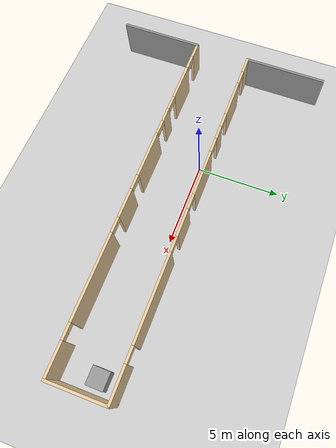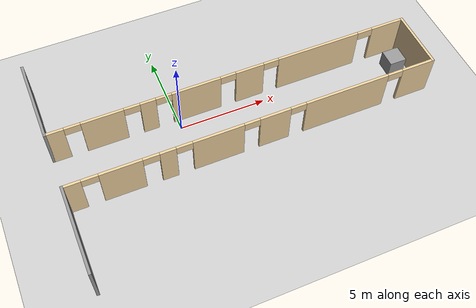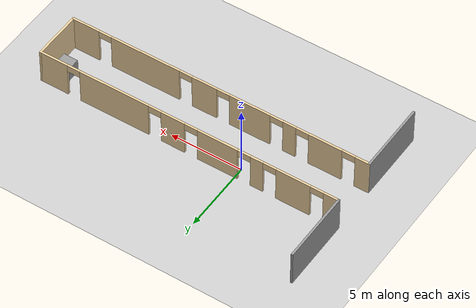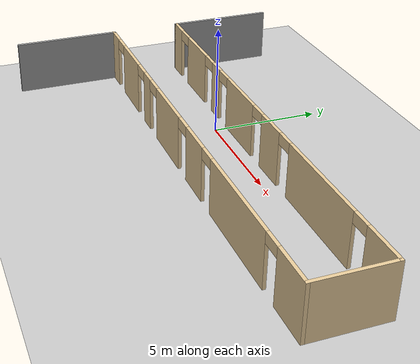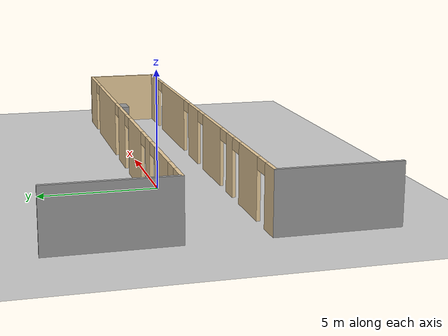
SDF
<sdf version="1.7">
 <world name="default">
  <light name="sun" type="directional">
   <pose>0 0 10 0 -0 0</pose>
   <diffuse>0.8 0.8 0.8 1</diffuse>
   <specular>0.2 0.2 0.2 1</specular>
   <attenuation>
    <range>1000</range>
    <constant>0.9</constant>
    <linear>0.01</linear>
    <quadratic>0.001</quadratic>
   </attenuation>
   <direction>-0.5 0.1 -0.9</direction>
   <spot><inner_angle>0</inner_angle><outer_angle>0</outer_angle><falloff>0</falloff></spot>
  </light>
  <model name="ground_plane">
   <static>1</static>
   <link name="link">
    <collision name="collision">
     <geometry><plane><normal>0 0 1</normal><size>100 100</size></plane></geometry>
     <surface><friction><ode><mu>100</mu><mu2>50</mu2></ode></friction></surface>
    </collision>
    <visual name="visual">
     <cast_shadows>0</cast_shadows>
     <geometry><plane><normal>0 0 1</normal><size>100 100</size></plane></geometry>
     <material>
      <script><uri>file://media/materials/scripts/gazebo.material</uri><name>Gazebo/Grey</name></script>
     </material>
    </visual>
   </link>
  </model>
  <gravity>0 0 -9.8</gravity>
  <magnetic_field>6e-06 2.3e-05 -4.2e-05</magnetic_field>
  <atmosphere type="adiabatic"/>
  <physics type="ode">
   <max_step_size>0.001</max_step_size>
   <real_time_factor>1</real_time_factor>
   <real_time_update_rate>1000</real_time_update_rate>
  </physics>
  <scene><ambient>0.4 0.4 0.4 1</ambient><background>0.7 0.7 0.7 1</background><shadows>1</shadows></scene>
  <audio><device>default</device></audio>
  <spherical_coordinates>
   <surface_model>EARTH_WGS84</surface_model>
   <latitude_deg>0</latitude_deg>
   <longitude_deg>0</longitude_deg>
   <elevation>0</elevation>
   <heading_deg>0</heading_deg>
  </spherical_coordinates>
  <model name="wall_test_model">
   <pose>3.43114 -1.0395 0 0 -0 0</pose>
   <link name="Wall_0">
    <pose>0 1.675 0 0 -0 0</pose>
    <visual name="Wall_0_Visual_0">
     <pose>-10.0856 0 1.25 0 -0 0</pose>
     <geometry><box><size>1.07871 0.15 2.5</size></box></geometry>
     <material>
      <script><uri>file://media/materials/scripts/gazebo.material</uri><name>Gazebo/Grey</name></script>
      <ambient>0.921569 0.807843 0.615686 1</ambient>
     </material>
     <meta><layer>0</layer></meta>
    </visual>
    <collision name="Wall_0_Collision_0">
     <geometry><box><size>1.07871 0.15 2.5</size></box></geometry>
     <pose>-10.0856 0 1.25 0 -0 0</pose>
    </collision>
    <visual name="Wall_0_Visual_1">
     <pose>-7.46869 0 1.25 0 -0 0</pose>
     <geometry><box><size>2.3552 0.15 2.5</size></box></geometry>
     <material>
      <script><uri>file://media/materials/scripts/gazebo.material</uri><name>Gazebo/Grey</name></script>
      <ambient>0.921569 0.807843 0.615686 1</ambient>
     </material>
     <meta><layer>0</layer></meta>
    </visual>
    <collision name="Wall_0_Collision_1">
     <geometry><box><size>2.3552 0.15 2.5</size></box></geometry>
     <pose>-7.46869 0 1.25 0 -0 0</pose>
    </collision>
    <visual name="Wall_0_Visual_2">
     <pose>-4.95073 0 1.25 0 -0 0</pose>
     <geometry><box><size>0.880719 0.15 2.5</size></box></geometry>
     <material>
      <script><uri>file://media/materials/scripts/gazebo.material</uri><name>Gazebo/Grey</name></script>
      <ambient>0.921569 0.807843 0.615686 1</ambient>
     </material>
     <meta><layer>0</layer></meta>
    </visual>
    <collision name="Wall_0_Collision_2">
     <geometry><box><size>0.880719 0.15 2.5</size></box></geometry>
     <pose>-4.95073 0 1.25 0 -0 0</pose>
    </collision>
    <visual name="Wall_0_Visual_3">
     <pose>-2.19459 0 1.25 0 -0 0</pose>
     <geometry><box><size>2.83157 0.15 2.5</size></box></geometry>
     <material>
      <script><uri>file://media/materials/scripts/gazebo.material</uri><name>Gazebo/Grey</name></script>
      <ambient>0.921569 0.807843 0.615686 1</ambient>
     </material>
     <meta><layer>0</layer></meta>
    </visual>
    <collision name="Wall_0_Collision_3">
     <geometry><box><size>2.83157 0.15 2.5</size></box></geometry>
     <pose>-2.19459 0 1.25 0 -0 0</pose>
    </collision>
    <visual name="Wall_0_Visual_4">
     <pose>0.958531 0 1.25 0 -0 0</pose>
     <geometry><box><size>1.67467 0.15 2.5</size></box></geometry>
     <material>
      <script><uri>file://media/materials/scripts/gazebo.material</uri><name>Gazebo/Grey</name></script>
      <ambient>0.921569 0.807843 0.615686 1</ambient>
     </material>
     <meta><layer>0</layer></meta>
    </visual>
    <collision name="Wall_0_Collision_4">
     <geometry><box><size>1.67467 0.15 2.5</size></box></geometry>
     <pose>0.958531 0 1.25 0 -0 0</pose>
    </collision>
    <visual name="Wall_0_Visual_5">
     <pose>5.18348 0 1.25 0 -0 0</pose>
     <geometry><box><size>4.97524 0.15 2.5</size></box></geometry>
     <material>
      <script><uri>file://media/materials/scripts/gazebo.material</uri><name>Gazebo/Grey</name></script>
      <ambient>0.921569 0.807843 0.615686 1</ambient>
     </material>
     <meta><layer>0</layer></meta>
    </visual>
    <collision name="Wall_0_Collision_5">
     <geometry><box><size>4.97524 0.15 2.5</size></box></geometry>
     <pose>5.18348 0 1.25 0 -0 0</pose>
    </collision>
    <visual name="Wall_0_Visual_6">
     <pose>9.59805 0 1.25 0 -0 0</pose>
     <geometry><box><size>2.0539 0.15 2.5</size></box></geometry>
     <material>
      <script><uri>file://media/materials/scripts/gazebo.material</uri><name>Gazebo/Grey</name></script>
      <ambient>0.921569 0.807843 0.615686 1</ambient>
     </material>
     <meta><layer>0</layer></meta>
    </visual>
    <collision name="Wall_0_Collision_6">
     <geometry><box><size>2.0539 0.15 2.5</size></box></geometry>
     <pose>9.59805 0 1.25 0 -0 0</pose>
    </collision>
    <visual name="Wall_0_Visual_7">
     <pose>-9.09629 0 2.25 0 -0 0</pose>
     <geometry><box><size>0.9 0.15 0.5</size></box></geometry>
     <material>
      <script><uri>file://media/materials/scripts/gazebo.material</uri><name>Gazebo/Grey</name></script>
      <ambient>0.921569 0.807843 0.615686 1</ambient>
     </material>
     <meta><layer>0</layer></meta>
    </visual>
    <collision name="Wall_0_Collision_7">
     <geometry><box><size>0.9 0.15 0.5</size></box></geometry>
     <pose>-9.09629 0 2.25 0 -0 0</pose>
    </collision>
    <visual name="Wall_0_Visual_8">
     <pose>-5.84109 0 2.25 0 -0 0</pose>
     <geometry><box><size>0.9 0.15 0.5</size></box></geometry>
     <material>
      <script><uri>file://media/materials/scripts/gazebo.material</uri><name>Gazebo/Grey</name></script>
      <ambient>0.921569 0.807843 0.615686 1</ambient>
     </material>
     <meta><layer>0</layer></meta>
    </visual>
    <collision name="Wall_0_Collision_8">
     <geometry><box><size>0.9 0.15 0.5</size></box></geometry>
     <pose>-5.84109 0 2.25 0 -0 0</pose>
    </collision>
    <visual name="Wall_0_Visual_9">
     <pose>-4.06037 0 2.25 0 -0 0</pose>
     <geometry><box><size>0.9 0.15 0.5</size></box></geometry>
     <material>
      <script><uri>file://media/materials/scripts/gazebo.material</uri><name>Gazebo/Grey</name></script>
      <ambient>0.921569 0.807843 0.615686 1</ambient>
     </material>
     <meta><layer>0</layer></meta>
    </visual>
    <collision name="Wall_0_Collision_9">
     <geometry><box><size>0.9 0.15 0.5</size></box></geometry>
     <pose>-4.06037 0 2.25 0 -0 0</pose>
    </collision>
    <visual name="Wall_0_Visual_10">
     <pose>-0.328803 0 2.25 0 -0 0</pose>
     <geometry><box><size>0.9 0.15 0.5</size></box></geometry>
     <material>
      <script><uri>file://media/materials/scripts/gazebo.material</uri><name>Gazebo/Grey</name></script>
      <ambient>0.921569 0.807843 0.615686 1</ambient>
     </material>
     <meta><layer>0</layer></meta>
    </visual>
    <collision name="Wall_0_Collision_10">
     <geometry><box><size>0.9 0.15 0.5</size></box></geometry>
     <pose>-0.328803 0 2.25 0 -0 0</pose>
    </collision>
    <visual name="Wall_0_Visual_11">
     <pose>2.24587 0 2.25 0 -0 0</pose>
     <geometry><box><size>0.9 0.15 0.5</size></box></geometry>
     <material>
      <script><uri>file://media/materials/scripts/gazebo.material</uri><name>Gazebo/Grey</name></script>
      <ambient>0.921569 0.807843 0.615686 1</ambient>
     </material>
     <meta><layer>0</layer></meta>
    </visual>
    <collision name="Wall_0_Collision_11">
     <geometry><box><size>0.9 0.15 0.5</size></box></geometry>
     <pose>2.24587 0 2.25 0 -0 0</pose>
    </collision>
    <visual name="Wall_0_Visual_12">
     <pose>8.1211 0 2.25 0 -0 0</pose>
     <geometry><box><size>0.9 0.15 0.5</size></box></geometry>
     <material>
      <script><uri>file://media/materials/scripts/gazebo.material</uri><name>Gazebo/Grey</name></script>
      <ambient>0.921569 0.807843 0.615686 1</ambient>
     </material>
     <meta><layer>0</layer></meta>
    </visual>
    <collision name="Wall_0_Collision_12">
     <geometry><box><size>0.9 0.15 0.5</size></box></geometry>
     <pose>8.1211 0 2.25 0 -0 0</pose>
    </collision>
   </link>
   <link name="Wall_2">
    <collision name="Wall_2_Collision">
     <geometry><box><size>3.5 0.15 2.5</size></box></geometry>
     <pose>0 0 1.25 0 -0 0</pose>
    </collision>
    <visual name="Wall_2_Visual">
     <pose>0 0 1.25 0 -0 0</pose>
     <geometry><box><size>3.5 0.15 2.5</size></box></geometry>
     <material>
      <script><uri>file://media/materials/scripts/gazebo.material</uri><name>Gazebo/Grey</name></script>
      <ambient>0.921569 0.807843 0.615686 1</ambient>
     </material>
     <meta><layer>0</layer></meta>
    </visual>
    <pose>10.55 -0 0 0 -0 -1.5708</pose>
   </link>
   <link name="Wall_3">
    <pose>0 -1.675 0 0 -0 3.14159</pose>
    <visual name="Wall_3_Visual_0">
     <pose>-9.62641 0 1.25 0 -0 0</pose>
     <geometry><box><size>1.99719 0.15 2.5</size></box></geometry>
     <material>
      <script><uri>file://media/materials/scripts/gazebo.material</uri><name>Gazebo/Grey</name></script>
      <ambient>0.921569 0.807843 0.615686 1</ambient>
     </material>
     <meta><layer>0</layer></meta>
    </visual>
    <collision name="Wall_3_Collision_0">
     <geometry><box><size>1.99719 0.15 2.5</size></box></geometry>
     <pose>-9.62641 0 1.25 0 -0 0</pose>
    </collision>
    <visual name="Wall_3_Visual_1">
     <pose>-5.24587 0 1.25 0 -0 0</pose>
     <geometry><box><size>4.96389 0.15 2.5</size></box></geometry>
     <material>
      <script><uri>file://media/materials/scripts/gazebo.material</uri><name>Gazebo/Grey</name></script>
      <ambient>0.921569 0.807843 0.615686 1</ambient>
     </material>
     <meta><layer>0</layer></meta>
    </visual>
    <collision name="Wall_3_Collision_1">
     <geometry><box><size>4.96389 0.15 2.5</size></box></geometry>
     <pose>-5.24587 0 1.25 0 -0 0</pose>
    </collision>
    <visual name="Wall_3_Visual_2">
     <pose>-0.975544 0 1.25 0 -0 0</pose>
     <geometry><box><size>1.77675 0.15 2.5</size></box></geometry>
     <material>
      <script><uri>file://media/materials/scripts/gazebo.material</uri><name>Gazebo/Grey</name></script>
      <ambient>0.921569 0.807843 0.615686 1</ambient>
     </material>
     <meta><layer>0</layer></meta>
    </visual>
    <collision name="Wall_3_Collision_2">
     <geometry><box><size>1.77675 0.15 2.5</size></box></geometry>
     <pose>-0.975544 0 1.25 0 -0 0</pose>
    </collision>
    <visual name="Wall_3_Visual_3">
     <pose>2.2513 0 1.25 0 -0 0</pose>
     <geometry><box><size>2.87694 0.15 2.5</size></box></geometry>
     <material>
      <script><uri>file://media/materials/scripts/gazebo.material</uri><name>Gazebo/Grey</name></script>
      <ambient>0.921569 0.807843 0.615686 1</ambient>
     </material>
     <meta><layer>0</layer></meta>
    </visual>
    <collision name="Wall_3_Collision_3">
     <geometry><box><size>2.87694 0.15 2.5</size></box></geometry>
     <pose>2.2513 0 1.25 0 -0 0</pose>
    </collision>
    <visual name="Wall_3_Visual_4">
     <pose>5.0358 0 1.25 0 -0 0</pose>
     <geometry><box><size>0.89206 0.15 2.5</size></box></geometry>
     <material>
      <script><uri>file://media/materials/scripts/gazebo.material</uri><name>Gazebo/Grey</name></script>
      <ambient>0.921569 0.807843 0.615686 1</ambient>
     </material>
     <meta><layer>0</layer></meta>
    </visual>
    <collision name="Wall_3_Collision_4">
     <geometry><box><size>0.89206 0.15 2.5</size></box></geometry>
     <pose>5.0358 0 1.25 0 -0 0</pose>
    </collision>
    <visual name="Wall_3_Visual_5">
     <pose>7.53674 0 1.25 0 -0 0</pose>
     <geometry><box><size>2.30983 0.15 2.5</size></box></geometry>
     <material>
      <script><uri>file://media/materials/scripts/gazebo.material</uri><name>Gazebo/Grey</name></script>
      <ambient>0.921569 0.807843 0.615686 1</ambient>
     </material>
     <meta><layer>0</layer></meta>
    </visual>
    <collision name="Wall_3_Collision_5">
     <geometry><box><size>2.30983 0.15 2.5</size></box></geometry>
     <pose>7.53674 0 1.25 0 -0 0</pose>
    </collision>
    <visual name="Wall_3_Visual_6">
     <pose>10.1083 0 1.25 0 -0 0</pose>
     <geometry><box><size>1.03334 0.15 2.5</size></box></geometry>
     <material>
      <script><uri>file://media/materials/scripts/gazebo.material</uri><name>Gazebo/Grey</name></script>
      <ambient>0.921569 0.807843 0.615686 1</ambient>
     </material>
     <meta><layer>0</layer></meta>
    </visual>
    <collision name="Wall_3_Collision_6">
     <geometry><box><size>1.03334 0.15 2.5</size></box></geometry>
     <pose>10.1083 0 1.25 0 -0 0</pose>
    </collision>
    <visual name="Wall_3_Visual_7">
     <pose>-8.17781 0 2.25 0 -0 0</pose>
     <geometry><box><size>0.9 0.15 0.5</size></box></geometry>
     <material>
      <script><uri>file://media/materials/scripts/gazebo.material</uri><name>Gazebo/Grey</name></script>
      <ambient>0.921569 0.807843 0.615686 1</ambient>
     </material>
     <meta><layer>0</layer></meta>
    </visual>
    <collision name="Wall_3_Collision_7">
     <geometry><box><size>0.9 0.15 0.5</size></box></geometry>
     <pose>-8.17781 0 2.25 0 -0 0</pose>
    </collision>
    <visual name="Wall_3_Visual_8">
     <pose>-2.31392 0 2.25 0 -0 0</pose>
     <geometry><box><size>0.9 0.15 0.5</size></box></geometry>
     <material>
      <script><uri>file://media/materials/scripts/gazebo.material</uri><name>Gazebo/Grey</name></script>
      <ambient>0.921569 0.807843 0.615686 1</ambient>
     </material>
     <meta><layer>0</layer></meta>
    </visual>
    <collision name="Wall_3_Collision_8">
     <geometry><box><size>0.9 0.15 0.5</size></box></geometry>
     <pose>-2.31392 0 2.25 0 -0 0</pose>
    </collision>
    <visual name="Wall_3_Visual_9">
     <pose>0.36283 0 2.25 0 -0 0</pose>
     <geometry><box><size>0.9 0.15 0.5</size></box></geometry>
     <material>
      <script><uri>file://media/materials/scripts/gazebo.material</uri><name>Gazebo/Grey</name></script>
      <ambient>0.921569 0.807843 0.615686 1</ambient>
     </material>
     <meta><layer>0</layer></meta>
    </visual>
    <collision name="Wall_3_Collision_9">
     <geometry><box><size>0.9 0.15 0.5</size></box></geometry>
     <pose>0.36283 0 2.25 0 -0 0</pose>
    </collision>
    <visual name="Wall_3_Visual_10">
     <pose>4.13977 0 2.25 0 -0 0</pose>
     <geometry><box><size>0.9 0.15 0.5</size></box></geometry>
     <material>
      <script><uri>file://media/materials/scripts/gazebo.material</uri><name>Gazebo/Grey</name></script>
      <ambient>0.921569 0.807843 0.615686 1</ambient>
     </material>
     <meta><layer>0</layer></meta>
    </visual>
    <collision name="Wall_3_Collision_10">
     <geometry><box><size>0.9 0.15 0.5</size></box></geometry>
     <pose>4.13977 0 2.25 0 -0 0</pose>
    </collision>
    <visual name="Wall_3_Visual_11">
     <pose>5.93183 0 2.25 0 -0 0</pose>
     <geometry><box><size>0.9 0.15 0.5</size></box></geometry>
     <material>
      <script><uri>file://media/materials/scripts/gazebo.material</uri><name>Gazebo/Grey</name></script>
      <ambient>0.921569 0.807843 0.615686 1</ambient>
     </material>
     <meta><layer>0</layer></meta>
    </visual>
    <collision name="Wall_3_Collision_11">
     <geometry><box><size>0.9 0.15 0.5</size></box></geometry>
     <pose>5.93183 0 2.25 0 -0 0</pose>
    </collision>
    <visual name="Wall_3_Visual_12">
     <pose>9.14166 0 2.25 0 -0 0</pose>
     <geometry><box><size>0.9 0.15 0.5</size></box></geometry>
     <material>
      <script><uri>file://media/materials/scripts/gazebo.material</uri><name>Gazebo/Grey</name></script>
      <ambient>0.921569 0.807843 0.615686 1</ambient>
     </material>
     <meta><layer>0</layer></meta>
    </visual>
    <collision name="Wall_3_Collision_12">
     <geometry><box><size>0.9 0.15 0.5</size></box></geometry>
     <pose>9.14166 0 2.25 0 -0 0</pose>
    </collision>
   </link>
   <link name="Wall_4">
    <collision name="Wall_4_Collision">
     <geometry><box><size>5 0.15 2.5</size></box></geometry>
     <pose>0 0 1.25 0 -0 0</pose>
    </collision>
    <visual name="Wall_4_Visual">
     <pose>0 0 1.25 0 -0 0</pose>
     <geometry><box><size>5 0.15 2.5</size></box></geometry>
     <material>
      <script><uri>file://media/materials/scripts/gazebo.material</uri><name>Gazebo/Grey</name></script>
      <ambient>1 1 1 1</ambient>
     </material>
     <meta><layer>0</layer></meta>
    </visual>
    <pose>-10.55 -4.1 0 0 -0 -1.5708</pose>
   </link>
   <link name="Wall_6">
    <collision name="Wall_6_Collision">
     <geometry><box><size>5 0.15 2.5</size></box></geometry>
     <pose>0 0 1.25 0 -0 0</pose>
    </collision>
    <visual name="Wall_6_Visual">
     <pose>0 0 1.25 0 -0 0</pose>
     <geometry><box><size>5 0.15 2.5</size></box></geometry>
     <material>
      <script><uri>file://media/materials/scripts/gazebo.material</uri><name>Gazebo/Grey</name></script>
      <ambient>1 1 1 1</ambient>
     </material>
     <meta><layer>0</layer></meta>
    </visual>
    <pose>-10.55 4.1 0 0 -0 1.5708</pose>
   </link>
   <static>1</static>
  </model>
  <model name="unit_box">
   <pose>13.0936 -0.629107 0.5 0 0 -0.011326</pose>
   <link name="link">
    <inertial>
     <mass>1</mass>
     <inertia>
      <ixx>0.166667</ixx>
      <ixy>0</ixy>
      <ixz>0</ixz>
      <iyy>0.166667</iyy>
      <iyz>0</iyz>
      <izz>0.166667</izz>
     </inertia>
    </inertial>
    <collision name="collision"><geometry><box><size>1 1 1</size></box></geometry></collision>
    <visual name="visual">
     <geometry><box><size>1 1 1</size></box></geometry>
     <material>
      <script><name>Gazebo/Grey</name><uri>file://media/materials/scripts/gazebo.material</uri></script>
     </material>
    </visual>
   </link>
  </model>
  <light name="user_point_light_0" type="point">
   <pose>-13.1427 -1.29991 1 0 -0 0</pose>
   <diffuse>0.5 0.5 0.5 1</diffuse>
   <specular>0.1 0.1 0.1 1</specular>
   <attenuation>
    <range>20</range>
    <constant>0.5</constant>
    <linear>0.01</linear>
    <quadratic>0.001</quadratic>
   </attenuation>
   <cast_shadows>0</cast_shadows>
   <direction>0 0 -1</direction>
  </light>
 </world>
</sdf>
